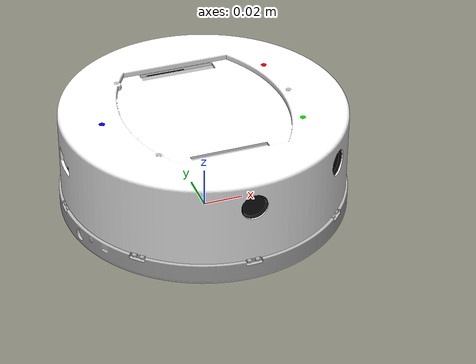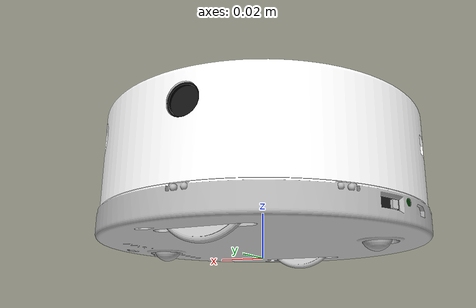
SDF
<?xml version='1.0'?>
<sdf version='1.6'>
  <model name='Khepera_IV'>
    <pose>0 0 0 0 -0 0</pose>

    <link name='chassis'>
      <pose>0 0 0.0 0 -0 0</pose>
      <inertial>
        <mass>0.5</mass>
        <inertia>
          <ixx>0.0007365</ixx>
          <ixy>0</ixy>
          <ixz>0</ixz>
          <iyy>0.0007365</iyy>
          <iyz>0</iyz>
          <izz>0.001239</izz>
        </inertia>
      </inertial>
      <visual name='visual'>
        <geometry>
          <mesh>
            <uri>model://khepera_IV/files/Empty_robot.dae</uri>
            <scale>1 1 1</scale>
          </mesh>
        </geometry>
      </visual>
      <collision name='collision'>
        <geometry>
          <mesh>
            <uri>model://khepera_IV/files/Empty_robot.dae</uri>
            <scale>1 1 1</scale>
          </mesh>
        </geometry>
      </collision>

      <sensor type="ray" name="range0">
        <always_on>true</always_on>
        <visualize>false</visualize>
        <update_rate>30</update_rate>
        <pose>0.0 0.0645 0.045 0.0 0 1.5707</pose>
        <ray>
          <scan>
            <horizontal>
              <samples>20</samples>
              <resolution>1</resolution>
              <min_angle>-0.5235</min_angle>
              <max_angle>0.5235</max_angle>
            </horizontal>
          </scan>
          <range>
            <min>0.25</min>
            <max>2.5</max>
            <resolution>0.02</resolution>
          </range>
          <noise>
            <type>gaussian</type>
            <mean>0.0</mean>
            <stddev>0.01</stddev>
          </noise>
        </ray>
        <plugin name="range0" filename="libgazebo_ros_ray_sensor.so">
          <ros>
            <remapping>~/out:=range0</remapping>
          </ros>
          <radiation_type>ultrasound</radiation_type>
          <output_type>sensor_msgs/Range</output_type>
        </plugin>
      </sensor>
      <sensor type="ray" name="range1">
        <always_on>true</always_on>
        <visualize>false</visualize>
        <update_rate>30</update_rate>
        <pose>0.04561 0.04561 0.045 0.0 0 0.7853</pose>
        <ray>
          <scan>
            <horizontal>
              <samples>20</samples>
              <resolution>1</resolution>
              <min_angle>-0.5235</min_angle>
              <max_angle>0.5235</max_angle>
            </horizontal>
          </scan>
          <range>
            <min>0.25</min>
            <max>2.5</max>
            <resolution>0.02</resolution>
          </range>
          <noise>
            <type>gaussian</type>
            <mean>0.0</mean>
            <stddev>0.01</stddev>
          </noise>
        </ray>
        <plugin name="range1" filename="libgazebo_ros_ray_sensor.so">
          <ros>
            <remapping>~/out:=range1</remapping>
          </ros>
          <radiation_type>ultrasound</radiation_type>
          <output_type>sensor_msgs/Range</output_type>
        </plugin>
      </sensor>
      <sensor type="ray" name="range2">
        <always_on>true</always_on>
        <visualize>false</visualize>
        <update_rate>30</update_rate>
        <pose>0.0645 0.0 0.045 0.0 0 0</pose>
        <ray>
          <scan>
            <horizontal>
              <samples>20</samples>
              <resolution>1</resolution>
              <min_angle>-0.5235</min_angle>
              <max_angle>0.5235</max_angle>
            </horizontal>
          </scan>
          <range>
            <min>0.25</min>
            <max>2.5</max>
            <resolution>0.02</resolution>
          </range>
        </ray>
        <plugin name="range2" filename="libgazebo_ros_ray_sensor.so">
          <ros>
            <remapping>~/out:=range2</remapping>
          </ros>
          <radiation_type>ultrasound</radiation_type>
          <output_type>sensor_msgs/Range</output_type>
        </plugin>
      </sensor>
      <sensor type="ray" name="range3">
        <always_on>true</always_on>
        <visualize>false</visualize>
        <update_rate>30</update_rate>
        <pose>0.04561 -0.04561 0.045 0.0 0 -0.7853</pose>
        <ray>
          <scan>
            <horizontal>
              <samples>20</samples>
              <resolution>1</resolution>
              <min_angle>-0.5235</min_angle>
              <max_angle>0.5235</max_angle>
            </horizontal>
          </scan>
          <range>
            <min>0.25</min>
            <max>2.5</max>
            <resolution>0.02</resolution>
          </range>
        </ray>
        <plugin name="range3" filename="libgazebo_ros_ray_sensor.so">
          <ros>
            <remapping>~/out:=range3</remapping>
          </ros>
          <radiation_type>ultrasound</radiation_type>
          <output_type>sensor_msgs/Range</output_type>
        </plugin>
      </sensor>
      <sensor type="ray" name="range4">
        <always_on>true</always_on>
        <visualize>false</visualize>
        <update_rate>30</update_rate>
        <pose>0.0 -0.0645 0.045 0.0 0 -1.5707</pose>
        <ray>
          <scan>
            <horizontal>
              <samples>20</samples>
              <resolution>1</resolution>
              <min_angle>-0.5235</min_angle>
              <max_angle>0.5235</max_angle>
            </horizontal>
          </scan>
          <range>
            <min>0.25</min>
            <max>2.5</max>
            <resolution>0.02</resolution>
          </range>
        </ray>
        <plugin name="range4" filename="libgazebo_ros_ray_sensor.so">
          <ros>
            <remapping>~/out:=range4</remapping>
          </ros>
          <radiation_type>ultrasound</radiation_type>
          <output_type>sensor_msgs/Range</output_type>
        </plugin>
      </sensor>
      <sensor type="gpu_ray" name="ir00">
        <always_on>true</always_on>
        <visualize>false</visualize>
        <update_rate>30</update_rate>
        <pose>-0.04978 0.04978 0.01547 0.0 0 2.3562</pose>
        <ray>
          <scan>
            <horizontal>
              <samples>20</samples>
              <resolution>1</resolution>
              <min_angle>-0.5235</min_angle>
              <max_angle>0.5235</max_angle>
            </horizontal>
          </scan>
          <range>
            <min>0.002</min>
            <max>0.25</max>
            <resolution>0.02</resolution>
          </range>
        </ray>

        <plugin name="ir00" filename="libgazebo_ros_ray_sensor.so">
          <!-- Change namespace and output topic so published topic is /rrbot/laser/scan -->
          <ros>
            <remapping>~/out:=ir00</remapping>
          </ros>
          <radiation_type>infrared</radiation_type>
          <!-- Set output to sensor_msgs/Range to get same output type as gazebo_ros_range -->
          <output_type>sensor_msgs/Range</output_type>
        </plugin>
      </sensor>
      <sensor type="gpu_ray" name="ir01">
        <always_on>true</always_on>
        <visualize>false</visualize>
        <update_rate>30</update_rate>
        <pose>-0.0 0.0704 0.01547 0.0 0 1.5708</pose>
        <ray>
          <scan>
            <horizontal>
              <samples>20</samples>
              <resolution>1</resolution>
              <min_angle>-0.5235</min_angle>
              <max_angle>0.5235</max_angle>
            </horizontal>
          </scan>
          <range>
            <min>0.002</min>
            <max>0.25</max>
            <resolution>0.02</resolution>
          </range>
        </ray>
        <plugin name="ir01" filename="libgazebo_ros_ray_sensor.so">
          <!-- Change namespace and output topic so published topic is /rrbot/laser/scan -->
          <ros>
            <remapping>~/out:=ir01</remapping>
          </ros>
          <radiation_type>infrared</radiation_type>
          <!-- Set output to sensor_msgs/Range to get same output type as gazebo_ros_range -->
          <output_type>sensor_msgs/Range</output_type>
        </plugin>
      </sensor>
      <sensor type="gpu_ray" name="ir02">
        <always_on>true</always_on>
        <visualize>false</visualize>
        <update_rate>30</update_rate>
        <pose>0.04978 0.04978 0.01547 0.0 0 0.7854</pose>
        <ray>
          <scan>
            <horizontal>
              <samples>20</samples>
              <resolution>1</resolution>
              <min_angle>-0.5235</min_angle>
              <max_angle>0.5235</max_angle>
            </horizontal>
          </scan>
          <range>
            <min>0.002</min>
            <max>0.25</max>
            <resolution>0.02</resolution>
          </range>
        </ray>
        <plugin name="ir02" filename="libgazebo_ros_ray_sensor.so">
          <!-- Change namespace and output topic so published topic is /rrbot/laser/scan -->
          <ros>
            <remapping>~/out:=ir02</remapping>
          </ros>
          <radiation_type>infrared</radiation_type>
          <!-- Set output to sensor_msgs/Range to get same output type as gazebo_ros_range -->
          <output_type>sensor_msgs/Range</output_type>
        </plugin>
      </sensor>
      <sensor type="gpu_ray" name="ir03">
        <always_on>true</always_on>
        <visualize>false</visualize>
        <update_rate>30</update_rate>
        <pose>0.0704 0.0 0.01547 0.0 0 0.0</pose>
        <ray>
          <scan>
            <horizontal>
              <samples>20</samples>
              <resolution>1</resolution>
              <min_angle>-0.5235</min_angle>
              <max_angle>0.5235</max_angle>
            </horizontal>
          </scan>
          <range>
            <min>0.002</min>
            <max>0.25</max>
            <resolution>0.02</resolution>
          </range>
        </ray>
        <plugin name="ir03" filename="libgazebo_ros_ray_sensor.so">
          <!-- Change namespace and output topic so published topic is /rrbot/laser/scan -->
          <ros>
            <remapping>~/out:=ir03</remapping>
          </ros>
          <radiation_type>infrared</radiation_type>
          <!-- Set output to sensor_msgs/Range to get same output type as gazebo_ros_range -->
          <output_type>sensor_msgs/Range</output_type>
        </plugin>
      </sensor>
      <sensor type="gpu_ray" name="ir04">
        <always_on>true</always_on>
        <visualize>false</visualize>
        <update_rate>30</update_rate>
        <pose>0.04978 -0.04978 0.01547 0.0 0 -0.7854</pose>
        <ray>
          <scan>
            <horizontal>
              <samples>20</samples>
              <resolution>1</resolution>
              <min_angle>-0.5235</min_angle>
              <max_angle>0.5235</max_angle>
            </horizontal>
          </scan>
          <range>
            <min>0.002</min>
            <max>0.25</max>
            <resolution>0.02</resolution>
          </range>
        </ray>
        <plugin name="ir04" filename="libgazebo_ros_ray_sensor.so">
          <!-- Change namespace and output topic so published topic is /rrbot/laser/scan -->
          <ros>
            <remapping>~/out:=ir04</remapping>
          </ros>
          <radiation_type>infrared</radiation_type>
          <!-- Set output to sensor_msgs/Range to get same output type as gazebo_ros_range -->
          <output_type>sensor_msgs/Range</output_type>
        </plugin>
      </sensor>
      <sensor type="gpu_ray" name="ir05">
        <always_on>true</always_on>
        <visualize>false</visualize>
        <update_rate>30</update_rate>
        <pose>-0.0 -0.0704 0.01547 0.0 0 -1.5708</pose>
        <ray>
          <scan>
            <horizontal>
              <samples>20</samples>
              <resolution>1</resolution>
              <min_angle>-0.5235</min_angle>
              <max_angle>0.5235</max_angle>
            </horizontal>
          </scan>
          <range>
            <min>0.002</min>
            <max>0.25</max>
            <resolution>0.02</resolution>
          </range>
        </ray>
        <plugin name="ir05" filename="libgazebo_ros_ray_sensor.so">
          <!-- Change namespace and output topic so published topic is /rrbot/laser/scan -->
          <ros>
            <remapping>~/out:=ir05</remapping>
          </ros>
          <radiation_type>infrared</radiation_type>
          <!-- Set output to sensor_msgs/Range to get same output type as gazebo_ros_range -->
          <output_type>sensor_msgs/Range</output_type>
        </plugin>
      </sensor>
      <sensor type="gpu_ray" name="ir06">
        <always_on>true</always_on>
        <visualize>false</visualize>
        <update_rate>30</update_rate>
        <pose>-0.04978 -0.04978 0.01547 0.0 0 -2.3562</pose>
        <ray>
          <scan>
            <horizontal>
              <samples>20</samples>
              <resolution>1</resolution>
              <min_angle>-0.5235</min_angle>
              <max_angle>0.5235</max_angle>
            </horizontal>
          </scan>
          <range>
            <min>0.002</min>
            <max>0.25</max>
            <resolution>0.02</resolution>
          </range>
        </ray>
        <plugin name="ir06" filename="libgazebo_ros_ray_sensor.so">
          <!-- Change namespace and output topic so published topic is /rrbot/laser/scan -->
          <ros>
            <remapping>~/out:=ir06</remapping>
          </ros>
          <radiation_type>infrared</radiation_type>
          <!-- Set output to sensor_msgs/Range to get same output type as gazebo_ros_range -->
          <output_type>sensor_msgs/Range</output_type>
        </plugin>
      </sensor>
      <sensor type="gpu_ray" name="ir07">
        <always_on>true</always_on>
        <visualize>false</visualize>
        <update_rate>30</update_rate>
        <pose>-0.0704 -0.0 0.01547 0.0 0 -3.1416</pose>
        <ray>
          <scan>
            <horizontal>
              <samples>20</samples>
              <resolution>1</resolution>
              <min_angle>-0.5235</min_angle>
              <max_angle>0.5235</max_angle>
            </horizontal>
          </scan>
          <range>
            <min>0.002</min>
            <max>0.25</max>
            <resolution>0.02</resolution>
          </range>
        </ray>
        <plugin name="ir07" filename="libgazebo_ros_ray_sensor.so">
          <!-- Change namespace and output topic so published topic is /rrbot/laser/scan -->
          <ros>
            <remapping>~/out:=ir07</remapping>
          </ros>
          <radiation_type>infrared</radiation_type>
          <!-- Set output to sensor_msgs/Range to get same output type as gazebo_ros_range -->
          <output_type>sensor_msgs/Range</output_type>
        </plugin>
      </sensor>
      <sensor type="gpu_ray" name="ir08">
        <always_on>true</always_on>
        <visualize>false</visualize>
        <update_rate>30</update_rate>
        <pose>0.019618 0.059522 0.0057 0.0 1.5708 -1.5707</pose>
        <ray>
          <scan>
            <horizontal>
              <samples>20</samples>
              <resolution>1</resolution>
              <min_angle>-0.5235</min_angle>
              <max_angle>0.5235</max_angle>
            </horizontal>
          </scan>
          <range>
            <min>0.002</min>
            <max>0.25</max>
            <resolution>0.02</resolution>
          </range>
        </ray>
        <plugin name="ir08" filename="libgazebo_ros_ray_sensor.so">
          <!-- Change namespace and output topic so published topic is /rrbot/laser/scan -->
          <ros>
            <remapping>~/out:=ir08</remapping>
          </ros>
          <radiation_type>infrared</radiation_type>
          <!-- Set output to sensor_msgs/Range to get same output type as gazebo_ros_range -->
          <output_type>sensor_msgs/Range</output_type>
        </plugin>
      </sensor>
      <sensor type="gpu_ray" name="ir09">
        <always_on>true</always_on>
        <visualize>false</visualize>
        <update_rate>30</update_rate>
        <pose>0.062921 0.010 0.0057 0.0 1.5708 0.0</pose>
        <ray>
          <scan>
            <horizontal>
              <samples>20</samples>
              <resolution>1</resolution>
              <min_angle>-0.5235</min_angle>
              <max_angle>0.5235</max_angle>
            </horizontal>
          </scan>
          <range>
            <min>0.002</min>
            <max>0.25</max>
            <resolution>0.02</resolution>
          </range>
        </ray>
        <plugin name="ir09" filename="libgazebo_ros_ray_sensor.so">
          <!-- Change namespace and output topic so published topic is /rrbot/laser/scan -->
          <ros>
            <remapping>~/out:=ir09</remapping>
          </ros>
          <radiation_type>infrared</radiation_type>
          <!-- Set output to sensor_msgs/Range to get same output type as gazebo_ros_range -->
          <output_type>sensor_msgs/Range</output_type>
        </plugin>
      </sensor>
      <sensor type="gpu_ray" name="ir10">
        <always_on>true</always_on>
        <visualize>false</visualize>
        <update_rate>30</update_rate>
        <pose>0.062921 -0.010 0.0057 0.0 1.5708 0.0</pose>
        <ray>
          <scan>
            <horizontal>
              <samples>20</samples>
              <resolution>1</resolution>
              <min_angle>-0.5235</min_angle>
              <max_angle>0.5235</max_angle>
            </horizontal>
          </scan>
          <range>
            <min>0.002</min>
            <max>0.25</max>
            <resolution>0.02</resolution>
          </range>
        </ray>
        <plugin name="ir10" filename="libgazebo_ros_ray_sensor.so">
          <!-- Change namespace and output topic so published topic is /rrbot/laser/scan -->
          <ros>
            <remapping>~/out:=ir10</remapping>
          </ros>
          <radiation_type>infrared</radiation_type>
          <!-- Set output to sensor_msgs/Range to get same output type as gazebo_ros_range -->
          <output_type>sensor_msgs/Range</output_type>
        </plugin>
      </sensor>
      <sensor type="gpu_ray" name="ir11">
        <always_on>true</always_on>
        <visualize>false</visualize>
        <update_rate>30</update_rate>
        <pose>0.019618 -0.059522 0.0057 0.0 1.5708 -1.5707</pose>
        <ray>
          <scan>
            <horizontal>
              <samples>20</samples>
              <resolution>1</resolution>
              <min_angle>-0.5235</min_angle>
              <max_angle>0.5235</max_angle>
            </horizontal>
          </scan>
          <range>
            <min>0.002</min>
            <max>0.25</max>
            <resolution>0.02</resolution>
          </range>
        </ray>
        <plugin name="ir11" filename="libgazebo_ros_ray_sensor.so">
          <!-- Change namespace and output topic so published topic is /rrbot/laser/scan -->
          <ros>
            <remapping>~/out:=ir11</remapping>
          </ros>
          <radiation_type>infrared</radiation_type>
          <!-- Set output to sensor_msgs/Range to get same output type as gazebo_ros_range -->
          <output_type>sensor_msgs/Range</output_type>
        </plugin>
      </sensor>
      <sensor name="imu_sensor" type="imu">
        <pose>0.0 0.0 0.04 0.0 0 0.0</pose>
        <always_on>true</always_on>
        <update_rate>30</update_rate>
        <plugin name="imu_plugin" filename="libgazebo_ros_imu_sensor.so">
          <ros>         <!-- Will publish to /imu/data -->
            <remapping>~/out:=imu/data</remapping>
          </ros>
        </plugin>
      </sensor>
      <sensor type="camera" name="camera">
        <pose>0.0645 0.0 0.025 0.0 0 0</pose>
          <update_rate>30.0</update_rate>
          <camera name="head">  <!-- TODO does this name do anything? -->
              <horizontal_fov>0.96</horizontal_fov>
              <image>
                  <width>960</width>
                  <height>720</height>
                  <format>R8G8B8</format>
              </image>
              <clip>
                  <near>0.1</near>
                  <far>300</far>
              </clip>
              <noise>
                  <type>gaussian</type>
                  <mean>0.0</mean>
                  <stddev>0.007</stddev>
              </noise>
          </camera>
          <plugin name="camera" filename="libgazebo_ros_camera.so">
              <alwaysOn>true</alwaysOn>
              <updateRate>0.0</updateRate>
              <cameraName>this_is_ignored</cameraName>
              <imageTopicName>image_raw</imageTopicName>
              <cameraInfoTopicName>camera_info</cameraInfoTopicName>
              <frameName>chassis</frameName>
              <hackBaseline>0.07</hackBaseline>
              <distortionK1>0.0</distortionK1>
              <distortionK2>0.0</distortionK2>
              <distortionK3>0.0</distortionK3>
              <distortionT1>0.0</distortionT1>
              <distortionT2>0.0</distortionT2>
          </plugin>
      </sensor>
    </link>

    <link name='left_wheel'>
      <pose>0 0.0527 0.021 -1.57070 0 0</pose>
      <inertial>
        <mass>0.02</mass>
        <inertia>
          <ixx>0.000003</ixx>
          <ixy>0</ixy>
          <ixz>0</ixz>
          <iyy>0.000003</iyy>
          <iyz>0</iyz>
          <izz>0.000003</izz>
        </inertia>
      </inertial>
      <visual name='visual'>
        <geometry>
          <mesh>
            <uri>model://khepera_IV/files/wheel.dae</uri>
            <scale>1 1 1</scale>
          </mesh>
        </geometry>
      </visual>
      <collision name='collision'>
        <geometry>
          <mesh>
            <uri>model://khepera_IV/files/wheel.dae</uri>
            <scale>1 1 1</scale>
          </mesh>
        </geometry>
        <surface>
          <friction>
            <ode>
              <mu>1</mu>
              <mu2>1</mu2>
              <slip1>0</slip1>
              <slip2>0</slip2>
            </ode>
          </friction>
          <contact>
            <ode>
              <soft_cfm>0</soft_cfm>
              <soft_erp>0.2</soft_erp>
              <kp>1e+13</kp>
              <kd>1</kd>
              <max_vel>0.01</max_vel>
              <min_depth>0.01</min_depth>
            </ode>
          </contact>
        </surface>
      </collision>
    </link>
    <link name='right_wheel'>
      <pose>0 -0.0527 0.021 -1.5707 0 0</pose>
      <inertial>
        <mass>0.02</mass>
        <inertia>
          <ixx>0.000003</ixx>
          <ixy>0</ixy>
          <ixz>0</ixz>
          <iyy>0.000003</iyy>
          <iyz>0</iyz>
          <izz>0.000003</izz>
        </inertia>
      </inertial>
      <visual name='visual'>
        <geometry>
          <mesh>
            <uri>model://khepera_IV/files/wheel.dae</uri>
            <scale>1 1 1</scale>
          </mesh>
        </geometry>
      </visual>
      <collision name='collision'>
        <geometry>
          <mesh>
            <uri>model://khepera_IV/files/wheel.dae</uri>
            <scale>1 1 1</scale>
          </mesh>
        </geometry>
        <surface>
          <friction>
            <ode>
              <mu>1</mu>
              <mu2>1</mu2>
              <slip1>0</slip1>
              <slip2>0</slip2>
            </ode>
          </friction>
          <contact>
            <ode>
              <soft_cfm>0</soft_cfm>
              <soft_erp>0.2</soft_erp>
              <kp>1e+13</kp>
              <kd>1</kd>
              <max_vel>0.01</max_vel>
              <min_depth>0.01</min_depth>
            </ode>
          </contact>
        </surface>
      </collision>
    </link>
    <link name='front_caster'>
      <pose>0.05 0 0.006614 0 -0 0</pose>
      <visual name='visual'>
        <geometry>
          <mesh>
            <uri>model://khepera_IV/files/caster.dae</uri>
            <scale>1 1 1</scale>
          </mesh>
        </geometry>
      </visual>
      <collision name='collision'>
        <geometry>
          <mesh>
            <uri>model://khepera_IV/files/caster.dae</uri>
            <scale>1 1 1</scale>
          </mesh>
        </geometry>
      </collision>
    </link>
    <link name='back_caster'>
      <pose>-0.05 0 0.006614 0 -0 0</pose>
      <visual name='visual'>
        <geometry>
          <mesh>
            <uri>model://khepera_IV/files/caster.dae</uri>
            <scale>1 1 1</scale>
          </mesh>
        </geometry>
      </visual>
      <collision name='collision'>
        <geometry>
          <mesh>
            <uri>model://khepera_IV/files/caster.dae</uri>
            <scale>1 1 1</scale>
          </mesh>
        </geometry>
      </collision>
    </link>

    <joint name='left_wheel_joint' type='revolute'>
      <parent>chassis</parent>
      <child>left_wheel</child>
      <axis>
        <xyz>0 0 1</xyz>
        <limit>
          <lower>-1.79769e+308</lower>
          <upper>1.79769e+308</upper>
        </limit>
      </axis>
    </joint>
    <joint name='right_wheel_joint' type='revolute'>
      <parent>chassis</parent>
      <child>right_wheel</child>
      <axis>
        <xyz>0 0 1</xyz>
        <limit>
          <lower>-1.79769e+308</lower>
          <upper>1.79769e+308</upper>
        </limit>
      </axis>
    </joint>
    <joint name='front_caster_wheel' type='fixed'>
      <parent>chassis</parent>
      <child>front_caster</child>
    </joint>
    <joint name='back_caster_wheel' type='fixed'>
      <parent>chassis</parent>
      <child>back_caster</child>
    </joint>

    <plugin name='diff_drive' filename='libgazebo_ros_diff_drive.so'>
      <ros>
        <remapping>odom:=odom</remapping>
      </ros>
      <!-- wheels -->
      <left_joint>left_wheel_joint</left_joint>
      <right_joint>right_wheel_joint</right_joint>
      <!-- kinematics -->
      <wheel_separation>0.1054</wheel_separation>
      <wheel_diameter>0.021</wheel_diameter>
      <!-- limits -->
      <max_wheel_torque>20</max_wheel_torque>
      <max_wheel_acceleration>1.0</max_wheel_acceleration>
      <!-- output -->
      <publish_odom>true</publish_odom>
      <publish_odom_tf>true</publish_odom_tf>
      <publish_wheel_tf>true</publish_wheel_tf>

      <odometry_frame>odom</odometry_frame>
      <robot_base_frame>chassis</robot_base_frame>
    </plugin>

    <plugin name="ground_truth" filename="libgazebo_ros_p3d.so">
        <ros>
            <remapping>odom:=ground_truth</remapping>
        </ros>
        <frame_name>map</frame_name>
        <body_name>chassis</body_name>
        <update_rate>100.0</update_rate>
        <gaussian_noise>0.01</gaussian_noise>
    </plugin>
  </model>

</sdf>
